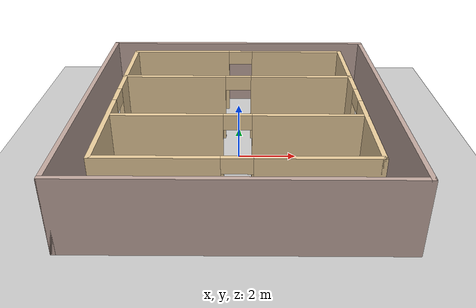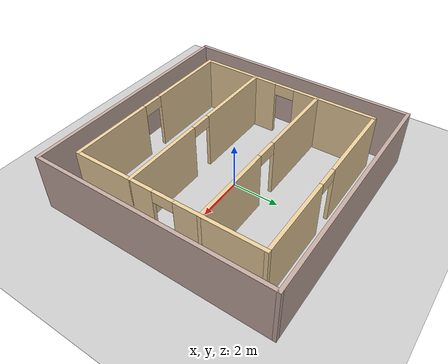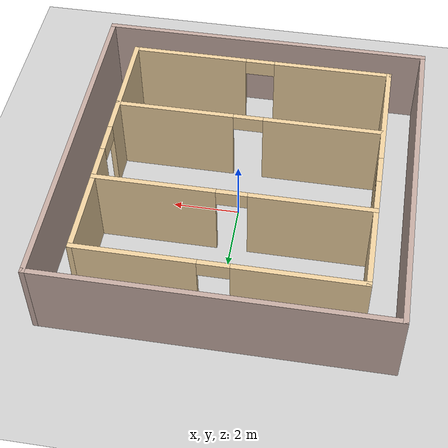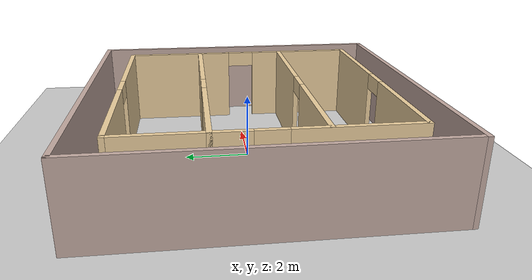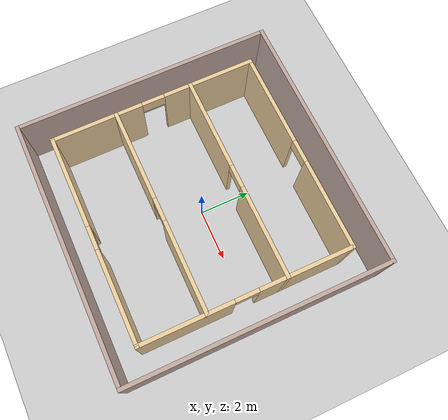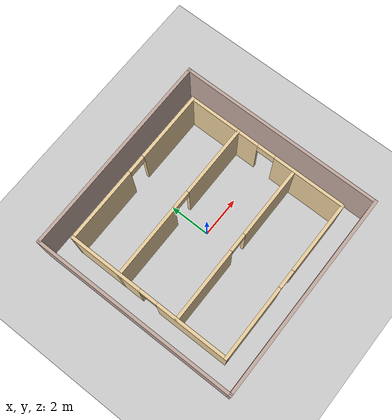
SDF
<sdf version="1.6">
 <world name="default">
  <light name="sun" type="directional">
   <pose>0 0 10 0 -0 0</pose>
   <diffuse>0.8 0.8 0.8 1</diffuse>
   <specular>0.1 0.1 0.1 1</specular>
   <attenuation>
    <range>1000</range>
    <constant>0.9</constant>
    <linear>0.01</linear>
    <quadratic>0.001</quadratic>
   </attenuation>
   <direction>-0.5 0.5 -1</direction>
  </light>
  <model name="ground_plane">
   <static>1</static>
   <link name="link">
    <collision name="collision">
     <geometry><plane><normal>0 0 1</normal><size>100 100</size></plane></geometry>
     <surface><friction><ode><mu>100</mu><mu2>50</mu2></ode></friction></surface>
    </collision>
    <visual name="visual">
     <cast_shadows>0</cast_shadows>
     <geometry><plane><normal>0 0 1</normal><size>100 100</size></plane></geometry>
     <material>
      <script><uri>file://media/materials/scripts/gazebo.material</uri><name>Gazebo/Grey</name></script>
     </material>
    </visual>
   </link>
  </model>
  <gravity>0 0 -9.8</gravity>
  <magnetic_field>6e-06 2.3e-05 -4.2e-05</magnetic_field>
  <atmosphere type="adiabatic"/>
  <physics name="default_physics" default="0" type="ode">
   <max_step_size>0.001</max_step_size>
   <real_time_factor>1</real_time_factor>
   <real_time_update_rate>1000</real_time_update_rate>
  </physics>
  <scene><ambient>0.4 0.4 0.4 1</ambient><background>0.7 0.7 0.7 1</background><shadows>1</shadows></scene>
  <spherical_coordinates>
   <surface_model>EARTH_WGS84</surface_model>
   <latitude_deg>0</latitude_deg>
   <longitude_deg>0</longitude_deg>
   <elevation>0</elevation>
   <heading_deg>0</heading_deg>
  </spherical_coordinates>
  <model name="gm0">
   <pose>-0.058313 -0.132058 0 0 -0 0</pose>
   <link name="Wall_31">
    <collision name="Wall_31_Collision">
     <geometry><box><size>10.15 0.15 2.5</size></box></geometry>
     <pose>0 0 1.25 0 -0 0</pose>
    </collision>
    <visual name="Wall_31_Visual">
     <pose>0 0 1.25 0 -0 0</pose>
     <geometry><box><size>10.15 0.15 2.5</size></box></geometry>
     <material>
      <script><uri>file://media/materials/scripts/gazebo.material</uri><name>Gazebo/Grey</name></script>
      <ambient>0.760784 0.662745 0.627451 1</ambient>
     </material>
    </visual>
    <pose>-5 0 0 0 -0 1.5708</pose>
   </link>
   <link name="Wall_33">
    <collision name="Wall_33_Collision">
     <geometry><box><size>10.15 0.15 2.5</size></box></geometry>
     <pose>0 0 1.25 0 -0 0</pose>
    </collision>
    <visual name="Wall_33_Visual">
     <pose>0 0 1.25 0 -0 0</pose>
     <geometry><box><size>10.15 0.15 2.5</size></box></geometry>
     <material>
      <script><uri>file://media/materials/scripts/gazebo.material</uri><name>Gazebo/Grey</name></script>
      <ambient>0.760784 0.662745 0.627451 1</ambient>
     </material>
    </visual>
    <pose>0 -5 0 0 -0 0</pose>
   </link>
   <link name="Wall_34">
    <collision name="Wall_34_Collision">
     <geometry><box><size>10.15 0.15 2.5</size></box></geometry>
     <pose>0 0 1.25 0 -0 0</pose>
    </collision>
    <visual name="Wall_34_Visual">
     <pose>0 0 1.25 0 -0 0</pose>
     <geometry><box><size>10.15 0.15 2.5</size></box></geometry>
     <material>
      <script><uri>file://media/materials/scripts/gazebo.material</uri><name>Gazebo/Grey</name></script>
      <ambient>0.760784 0.662745 0.627451 1</ambient>
     </material>
    </visual>
    <pose>5 0 0 0 -0 1.5708</pose>
   </link>
   <link name="Wall_35">
    <collision name="Wall_35_Collision">
     <geometry><box><size>10.15 0.15 2.5</size></box></geometry>
     <pose>0 0 1.25 0 -0 0</pose>
    </collision>
    <visual name="Wall_35_Visual">
     <pose>0 0 1.25 0 -0 0</pose>
     <geometry><box><size>10.15 0.15 2.5</size></box></geometry>
     <material>
      <script><uri>file://media/materials/scripts/gazebo.material</uri><name>Gazebo/Grey</name></script>
      <ambient>0.760784 0.662745 0.627451 1</ambient>
     </material>
    </visual>
    <pose>0 5 0 0 -0 3.14159</pose>
   </link>
   <link name="Wall_38">
    <pose>0 -4 0 0 -0 0</pose>
    <visual name="Wall_38_Visual_0">
     <pose>-2.2491 0 1.25 0 -0 0</pose>
     <geometry><box><size>3.65179 0.15 2.5</size></box></geometry>
     <material>
      <script><uri>file://media/materials/scripts/gazebo.material</uri><name>Gazebo/Grey</name></script>
      <ambient>0.921569 0.807843 0.615686 1</ambient>
     </material>
    </visual>
    <collision name="Wall_38_Collision_0">
     <geometry><box><size>3.65179 0.15 2.5</size></box></geometry>
     <pose>-2.2491 0 1.25 0 -0 0</pose>
    </collision>
    <visual name="Wall_38_Visual_1">
     <pose>2.2759 0 1.25 0 -0 0</pose>
     <geometry><box><size>3.59821 0.15 2.5</size></box></geometry>
     <material>
      <script><uri>file://media/materials/scripts/gazebo.material</uri><name>Gazebo/Grey</name></script>
      <ambient>0.921569 0.807843 0.615686 1</ambient>
     </material>
    </visual>
    <collision name="Wall_38_Collision_1">
     <geometry><box><size>3.59821 0.15 2.5</size></box></geometry>
     <pose>2.2759 0 1.25 0 -0 0</pose>
    </collision>
    <visual name="Wall_38_Visual_2">
     <pose>0.026793 0 2.25 0 -0 0</pose>
     <geometry><box><size>0.9 0.15 0.5</size></box></geometry>
     <material>
      <script><uri>file://media/materials/scripts/gazebo.material</uri><name>Gazebo/Grey</name></script>
      <ambient>0.921569 0.807843 0.615686 1</ambient>
     </material>
    </visual>
    <collision name="Wall_38_Collision_2">
     <geometry><box><size>0.9 0.15 0.5</size></box></geometry>
     <pose>0.026793 0 2.25 0 -0 0</pose>
    </collision>
   </link>
   <link name="Wall_39">
    <pose>4 0 0 0 -0 1.5708</pose>
    <visual name="Wall_39_Visual_0">
     <pose>-2.27458 0 1.25 0 -0 0</pose>
     <geometry><box><size>3.60084 0.15 2.5</size></box></geometry>
     <material>
      <script><uri>file://media/materials/scripts/gazebo.material</uri><name>Gazebo/Grey</name></script>
      <ambient>0.921569 0.807843 0.615686 1</ambient>
     </material>
    </visual>
    <collision name="Wall_39_Collision_0">
     <geometry><box><size>3.60084 0.15 2.5</size></box></geometry>
     <pose>-2.27458 0 1.25 0 -0 0</pose>
    </collision>
    <visual name="Wall_39_Visual_1">
     <pose>2.25042 0 1.25 0 -0 0</pose>
     <geometry><box><size>3.64916 0.15 2.5</size></box></geometry>
     <material>
      <script><uri>file://media/materials/scripts/gazebo.material</uri><name>Gazebo/Grey</name></script>
      <ambient>0.921569 0.807843 0.615686 1</ambient>
     </material>
    </visual>
    <collision name="Wall_39_Collision_1">
     <geometry><box><size>3.64916 0.15 2.5</size></box></geometry>
     <pose>2.25042 0 1.25 0 -0 0</pose>
    </collision>
    <visual name="Wall_39_Visual_2">
     <pose>-0.024158 0 2.25 0 -0 0</pose>
     <geometry><box><size>0.9 0.15 0.5</size></box></geometry>
     <material>
      <script><uri>file://media/materials/scripts/gazebo.material</uri><name>Gazebo/Grey</name></script>
      <ambient>0.921569 0.807843 0.615686 1</ambient>
     </material>
    </visual>
    <collision name="Wall_39_Collision_2">
     <geometry><box><size>0.9 0.15 0.5</size></box></geometry>
     <pose>-0.024158 0 2.25 0 -0 0</pose>
    </collision>
   </link>
   <link name="Wall_40">
    <pose>0 4 0 0 -0 3.14159</pose>
    <visual name="Wall_40_Visual_0">
     <pose>-2.31468 0 1.25 0 -0 0</pose>
     <geometry><box><size>3.52063 0.15 2.5</size></box></geometry>
     <material>
      <script><uri>file://media/materials/scripts/gazebo.material</uri><name>Gazebo/Grey</name></script>
      <ambient>0.921569 0.807843 0.615686 1</ambient>
     </material>
    </visual>
    <collision name="Wall_40_Collision_0">
     <geometry><box><size>3.52063 0.15 2.5</size></box></geometry>
     <pose>-2.31468 0 1.25 0 -0 0</pose>
    </collision>
    <visual name="Wall_40_Visual_1">
     <pose>2.21032 0 1.25 0 -0 0</pose>
     <geometry><box><size>3.72937 0.15 2.5</size></box></geometry>
     <material>
      <script><uri>file://media/materials/scripts/gazebo.material</uri><name>Gazebo/Grey</name></script>
      <ambient>0.921569 0.807843 0.615686 1</ambient>
     </material>
    </visual>
    <collision name="Wall_40_Collision_1">
     <geometry><box><size>3.72937 0.15 2.5</size></box></geometry>
     <pose>2.21032 0 1.25 0 -0 0</pose>
    </collision>
    <visual name="Wall_40_Visual_2">
     <pose>-0.104366 0 2.25 0 -0 0</pose>
     <geometry><box><size>0.9 0.15 0.5</size></box></geometry>
     <material>
      <script><uri>file://media/materials/scripts/gazebo.material</uri><name>Gazebo/Grey</name></script>
      <ambient>0.921569 0.807843 0.615686 1</ambient>
     </material>
    </visual>
    <collision name="Wall_40_Collision_2">
     <geometry><box><size>0.9 0.15 0.5</size></box></geometry>
     <pose>-0.104366 0 2.25 0 -0 0</pose>
    </collision>
   </link>
   <link name="Wall_41">
    <pose>-4 0 0 0 0 -1.5708</pose>
    <visual name="Wall_41_Visual_0">
     <pose>-2.25042 0 1.25 0 -0 0</pose>
     <geometry><box><size>3.64916 0.15 2.5</size></box></geometry>
     <material>
      <script><uri>file://media/materials/scripts/gazebo.material</uri><name>Gazebo/Grey</name></script>
      <ambient>0.921569 0.807843 0.615686 1</ambient>
     </material>
    </visual>
    <collision name="Wall_41_Collision_0">
     <geometry><box><size>3.64916 0.15 2.5</size></box></geometry>
     <pose>-2.25042 0 1.25 0 -0 0</pose>
    </collision>
    <visual name="Wall_41_Visual_1">
     <pose>2.27458 0 1.25 0 -0 0</pose>
     <geometry><box><size>3.60084 0.15 2.5</size></box></geometry>
     <material>
      <script><uri>file://media/materials/scripts/gazebo.material</uri><name>Gazebo/Grey</name></script>
      <ambient>0.921569 0.807843 0.615686 1</ambient>
     </material>
    </visual>
    <collision name="Wall_41_Collision_1">
     <geometry><box><size>3.60084 0.15 2.5</size></box></geometry>
     <pose>2.27458 0 1.25 0 -0 0</pose>
    </collision>
    <visual name="Wall_41_Visual_2">
     <pose>0.024158 0 2.25 0 -0 0</pose>
     <geometry><box><size>0.9 0.15 0.5</size></box></geometry>
     <material>
      <script><uri>file://media/materials/scripts/gazebo.material</uri><name>Gazebo/Grey</name></script>
      <ambient>0.921569 0.807843 0.615686 1</ambient>
     </material>
    </visual>
    <collision name="Wall_41_Collision_2">
     <geometry><box><size>0.9 0.15 0.5</size></box></geometry>
     <pose>0.024158 0 2.25 0 -0 0</pose>
    </collision>
   </link>
   <link name="Wall_43">
    <pose>0 1.5 0 0 -0 0</pose>
    <visual name="Wall_43_Visual_0">
     <pose>-2.2491 0 1.25 0 -0 0</pose>
     <geometry><box><size>3.65179 0.15 2.5</size></box></geometry>
     <material>
      <script><uri>file://media/materials/scripts/gazebo.material</uri><name>Gazebo/Grey</name></script>
      <ambient>0.921569 0.807843 0.615686 1</ambient>
     </material>
    </visual>
    <collision name="Wall_43_Collision_0">
     <geometry><box><size>3.65179 0.15 2.5</size></box></geometry>
     <pose>-2.2491 0 1.25 0 -0 0</pose>
    </collision>
    <visual name="Wall_43_Visual_1">
     <pose>2.2759 0 1.25 0 -0 0</pose>
     <geometry><box><size>3.59821 0.15 2.5</size></box></geometry>
     <material>
      <script><uri>file://media/materials/scripts/gazebo.material</uri><name>Gazebo/Grey</name></script>
      <ambient>0.921569 0.807843 0.615686 1</ambient>
     </material>
    </visual>
    <collision name="Wall_43_Collision_1">
     <geometry><box><size>3.59821 0.15 2.5</size></box></geometry>
     <pose>2.2759 0 1.25 0 -0 0</pose>
    </collision>
    <visual name="Wall_43_Visual_2">
     <pose>0.026793 0 2.25 0 -0 0</pose>
     <geometry><box><size>0.9 0.15 0.5</size></box></geometry>
     <material>
      <script><uri>file://media/materials/scripts/gazebo.material</uri><name>Gazebo/Grey</name></script>
      <ambient>0.921569 0.807843 0.615686 1</ambient>
     </material>
    </visual>
    <collision name="Wall_43_Collision_2">
     <geometry><box><size>0.9 0.15 0.5</size></box></geometry>
     <pose>0.026793 0 2.25 0 -0 0</pose>
    </collision>
   </link>
   <link name="Wall_45">
    <pose>0 -1.5 0 0 -0 0</pose>
    <visual name="Wall_45_Visual_0">
     <pose>-2.2491 0 1.25 0 -0 0</pose>
     <geometry><box><size>3.65179 0.15 2.5</size></box></geometry>
     <material>
      <script><uri>file://media/materials/scripts/gazebo.material</uri><name>Gazebo/Grey</name></script>
      <ambient>0.921569 0.807843 0.615686 1</ambient>
     </material>
    </visual>
    <collision name="Wall_45_Collision_0">
     <geometry><box><size>3.65179 0.15 2.5</size></box></geometry>
     <pose>-2.2491 0 1.25 0 -0 0</pose>
    </collision>
    <visual name="Wall_45_Visual_1">
     <pose>2.2759 0 1.25 0 -0 0</pose>
     <geometry><box><size>3.59821 0.15 2.5</size></box></geometry>
     <material>
      <script><uri>file://media/materials/scripts/gazebo.material</uri><name>Gazebo/Grey</name></script>
      <ambient>0.921569 0.807843 0.615686 1</ambient>
     </material>
    </visual>
    <collision name="Wall_45_Collision_1">
     <geometry><box><size>3.59821 0.15 2.5</size></box></geometry>
     <pose>2.2759 0 1.25 0 -0 0</pose>
    </collision>
    <visual name="Wall_45_Visual_2">
     <pose>0.026793 0 2.25 0 -0 0</pose>
     <geometry><box><size>0.9 0.15 0.5</size></box></geometry>
     <material>
      <script><uri>file://media/materials/scripts/gazebo.material</uri><name>Gazebo/Grey</name></script>
      <ambient>0.921569 0.807843 0.615686 1</ambient>
     </material>
    </visual>
    <collision name="Wall_45_Collision_2">
     <geometry><box><size>0.9 0.15 0.5</size></box></geometry>
     <pose>0.026793 0 2.25 0 -0 0</pose>
    </collision>
   </link>
   <static>1</static>
  </model>
  <audio><device>default</device></audio>
 </world>
</sdf>
